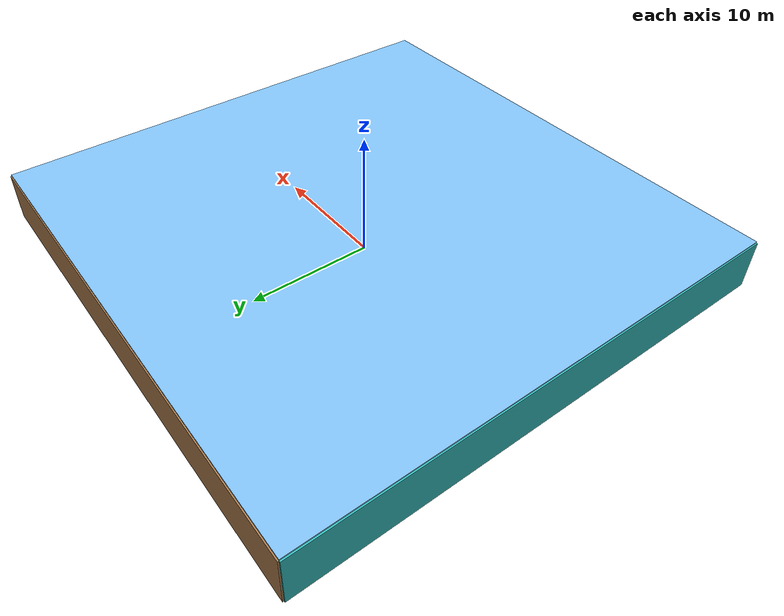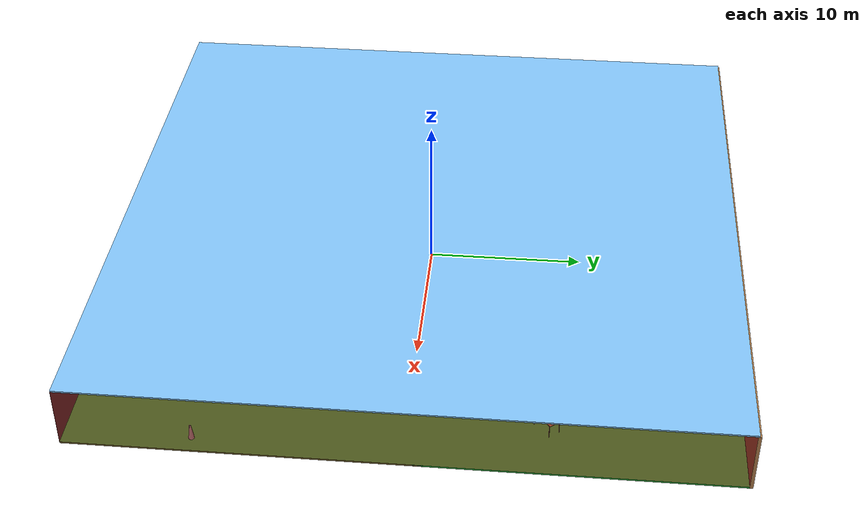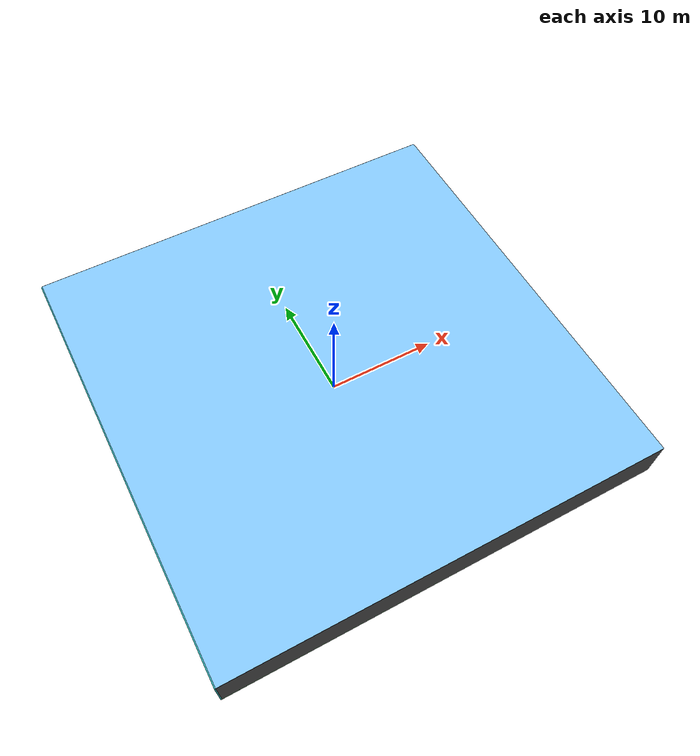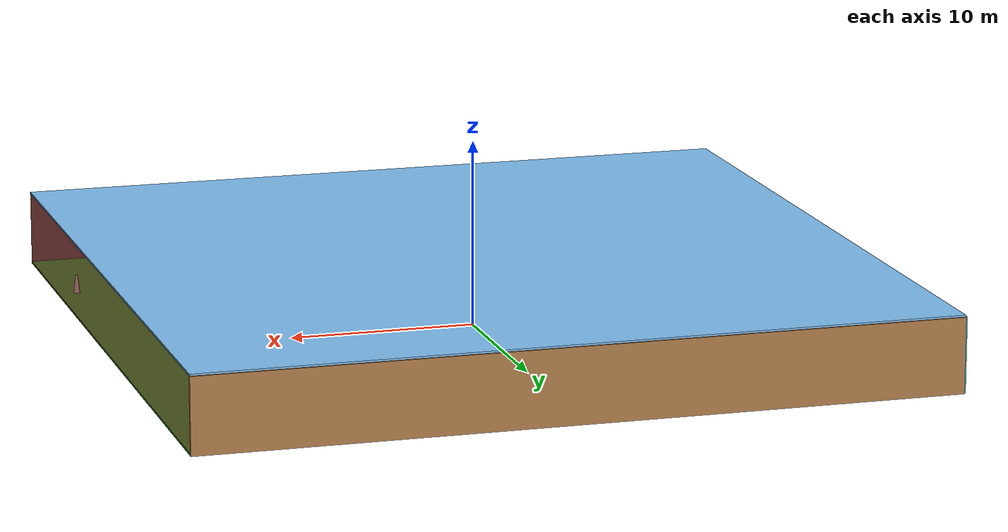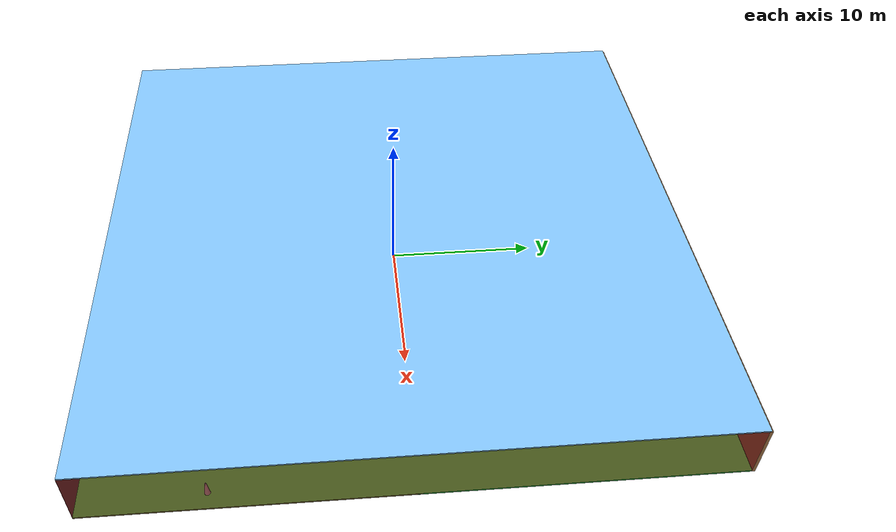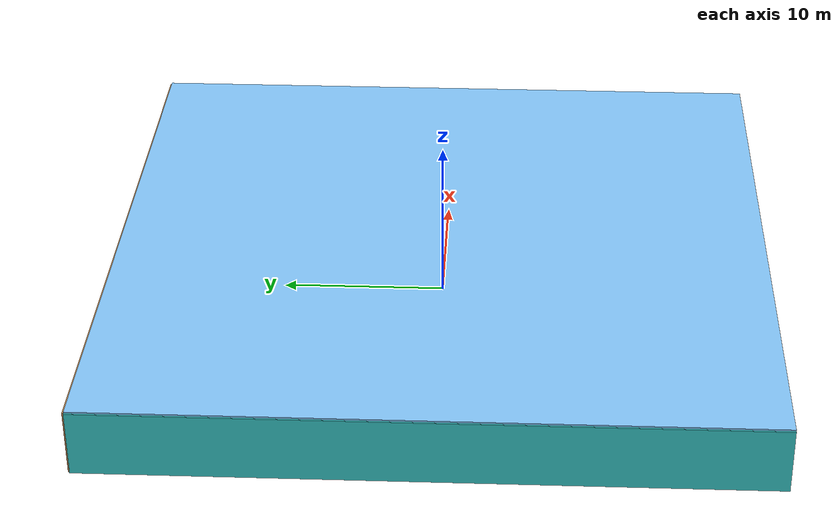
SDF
<sdf version="1.4">
 <world name="default">
  <physics type="ode">
   <max_step_size>0.001</max_step_size>
   <real_time_factor>1</real_time_factor>
   <real_time_update_rate>1000</real_time_update_rate>
   <gravity>0 0 -9.8</gravity>
  </physics>
  <scene><ambient>0.4 0.4 0.4 1</ambient><background>0.7 0.7 0.7 1</background><shadows>1</shadows></scene>
  <model name="Surrounding">
   <static>1</static>
   <link name="Ceiling">
    <collision name="Ceiling_Collision"><geometry><box><size>40 40 0.1</size></box></geometry></collision>
    <visual name="Ceiling_Visual">
     <geometry><box><size>40 40 0.1</size></box></geometry>
     <material>
      <script><uri>file://media/materials/scripts/gazebo.material</uri><name>Gazebo/SkyBlue</name></script>
     </material>
    </visual>
    <pose>0 0 4.05 0 0 0</pose>
   </link>
   <link name="Wall_South">
    <collision name="Wall_South_Collision">
     <geometry><box><size>40 0 4</size></box></geometry>
     <pose>0 0 2 0 -0 0</pose>
    </collision>
    <visual name="Wall_South_Visual">
     <pose>0 0 2 0 -0 0</pose>
     <geometry><box><size>40 0 4</size></box></geometry>
     <material>
      <script><uri>file://media/materials/scripts/gazebo.material</uri><name>Gazebo/DarkGrey</name></script>
     </material>
    </visual>
    <velocity_decay><linear>0</linear><angular>0</angular></velocity_decay>
    <pose>0 -20 0 0 -0 0</pose>
   </link>
   <link name="Wall_East">
    <collision name="Wall_21_Collision">
     <geometry><box><size>40 0 4</size></box></geometry>
     <pose>0 0 2 0 -0 0</pose>
    </collision>
    <visual name="Wall_21_Visual">
     <pose>0 0 2 0 -0 0</pose>
     <geometry><box><size>40 0 4</size></box></geometry>
     <material>
      <script><uri>file://media/materials/scripts/gazebo.material</uri><name>Gazebo/RedTransparent</name></script>
     </material>
    </visual>
    <velocity_decay><linear>0</linear><angular>0</angular></velocity_decay>
    <pose>20 0 0 0 -0 1.5708</pose>
   </link>
   <link name="Wall_North">
    <collision name="Wall_22_Collision">
     <geometry><box><size>40 0.2 4</size></box></geometry>
     <pose>0 0 2 0 -0 0</pose>
    </collision>
    <visual name="Wall_22_Visual">
     <pose>0 0 2 0 -0 0</pose>
     <geometry><box><size>40 0.2 4</size></box></geometry>
     <material>
      <script><uri>file://media/materials/scripts/gazebo.material</uri><name>Gazebo/Wood</name></script>
     </material>
    </visual>
    <velocity_decay><linear>0</linear><angular>0</angular></velocity_decay>
    <pose>0 20 0 0 -0 0</pose>
   </link>
   <link name="Wall_West">
    <collision name="Wall_23_Collision">
     <geometry><box><size>40 0.2 4</size></box></geometry>
     <pose>0 0 2 0 -0 0</pose>
    </collision>
    <visual name="Wall_23_Visual">
     <pose>0 0 2 0 -0 0</pose>
     <geometry><box><size>40 0.2 4</size></box></geometry>
     <material>
      <script><uri>file://media/materials/scripts/gazebo.material</uri><name>Gazebo/Turquoise</name></script>
     </material>
    </visual>
    <velocity_decay><linear>0</linear><angular>0</angular></velocity_decay>
    <pose>-20 0 0 0 0 -1.5708</pose>
   </link>
   <link name="Ground_link">
    <collision name="collision">
     <pose>0 0 .05 0 -0 0</pose>
     <geometry><box><size>40 40 0.1</size></box></geometry>
    </collision>
    <visual name="visual">
     <pose>0 0 .05 0 -0 0</pose>
     <geometry><box><size>40 40 0.1</size></box></geometry>
     <material>
      <script><uri>file://media/materials/scripts/gazebo.material</uri><name>Gazebo/Green</name></script>
     </material>
    </visual>
   </link>
   <static>1</static>
  </model>
  <spherical_coordinates>
   <surface_model>EARTH_WGS84</surface_model>
   <latitude_deg>0</latitude_deg>
   <longitude_deg>0</longitude_deg>
   <elevation>0</elevation>
   <heading_deg>0</heading_deg>
  </spherical_coordinates>
  <light name="lightball_0" type="diffuse">
   <diffuse>0.8 0.8 0.8 1</diffuse>
   <specular>0.2 0.2 0.2 1</specular>
   <attenuation>
    <range>100</range>
    <constant>0.7</constant>
    <linear>0.01</linear>
    <quadratic>0.001</quadratic>
   </attenuation>
   <direction>-0.5 0.1 -0.9</direction>
   <pose>13.0103211091 13.4895677232 2.46990724494 0 0 0</pose>
  </light>
  <light name="lightball_1" type="diffuse">
   <diffuse>0.8 0.8 0.8 1</diffuse>
   <specular>0.2 0.2 0.2 1</specular>
   <attenuation>
    <range>100</range>
    <constant>0.7</constant>
    <linear>0.01</linear>
    <quadratic>0.001</quadratic>
   </attenuation>
   <direction>-0.5 0.1 -0.9</direction>
   <pose>-8.10514467752 -10.2050972851 2.26170282302 0 0 0</pose>
  </light>
  <light name="lightball_2" type="diffuse">
   <diffuse>0.8 0.8 0.8 1</diffuse>
   <specular>0.2 0.2 0.2 1</specular>
   <attenuation>
    <range>100</range>
    <constant>0.7</constant>
    <linear>0.01</linear>
    <quadratic>0.001</quadratic>
   </attenuation>
   <direction>-0.5 0.1 -0.9</direction>
   <pose>-13.5787666993 9.82465449493 1.70572776476 0 0 0</pose>
  </light>
  <light name="lightball_3" type="diffuse">
   <diffuse>0.8 0.8 0.8 1</diffuse>
   <specular>0.2 0.2 0.2 1</specular>
   <attenuation>
    <range>100</range>
    <constant>0.7</constant>
    <linear>0.01</linear>
    <quadratic>0.001</quadratic>
   </attenuation>
   <direction>-0.5 0.1 -0.9</direction>
   <pose>-6.04406902574 -2.63915026817 2.00401902393 0 0 0</pose>
  </light>
  <light name="lightball_4" type="diffuse">
   <diffuse>0.8 0.8 0.8 1</diffuse>
   <specular>0.2 0.2 0.2 1</specular>
   <attenuation>
    <range>100</range>
    <constant>0.7</constant>
    <linear>0.01</linear>
    <quadratic>0.001</quadratic>
   </attenuation>
   <direction>-0.5 0.1 -0.9</direction>
   <pose>8.33662400449 10.9063341478 1.20958861163 0 0 0</pose>
  </light>
  <include><uri>model://cabinet</uri><pose>-18.0826534577 4.18390062281 0 0 0 2.40585297997</pose></include>
  <include>
   <uri>model://construction_cone</uri>
   <pose>-18.2833880474 14.378813036 0 0 0 1.64332616847</pose>
  </include>
  <include>
   <uri>model://robocup_3Dsim_goal</uri>
   <pose>-13.5425056378 -6.65577825936 0 0 0 0.244880852839</pose>
  </include>
  <include><uri>model://cabinet</uri><pose>-14.8870014003 0.75623696651 0 0 0 2.76942785645</pose></include>
  <include>
   <uri>model://construction_cone</uri>
   <pose>-14.9998969485 14.5133310069 0 0 0 1.13486939903</pose>
  </include>
  <include><uri>model://cabinet</uri><pose>-12.631504812 -14.4756079225 0 0 0 1.97793522969</pose></include>
  <include>
   <uri>model://robocup_3Dsim_goal</uri>
   <pose>-12.509883597 -11.6282123749 0 0 0 0.988823013701</pose>
  </include>
  <include><uri>model://cabinet</uri><pose>-10.5169820547 2.36565046552 0 0 0 0.966872890722</pose></include>
  <include><uri>model://table</uri><pose>-11.8167243453 5.63928824005 0 0 0 1.55782132536</pose></include>
  <include>
   <uri>model://construction_cone</uri>
   <pose>-7.91104370161 -6.53377505448 0 0 0 2.25542388623</pose>
  </include>
  <include>
   <uri>model://textured_shapes</uri>
   <pose>-8.1487751855 -1.93605634146 0 0 0 1.74751806903</pose>
  </include>
  <include>
   <uri>model://textured_shapes</uri>
   <pose>-7.82174449313 6.24453175379 0 0 0 1.57265118628</pose>
  </include>
  <include>
   <uri>model://construction_cone</uri>
   <pose>-7.98138529862 16.241333588 0 0 0 3.01663535138</pose>
  </include>
  <include>
   <uri>model://construction_cone</uri>
   <pose>-5.69703856184 -14.7580590565 0 0 0 2.83393187056</pose>
  </include>
  <include><uri>model://table</uri><pose>-5.90313160568 -2.91896059355 0 0 0 0.597077617053</pose></include>
  <include><uri>model://cabinet</uri><pose>-4.90811572577 11.8493218126 0 0 0 0.00646495235031</pose></include>
  <include>
   <uri>model://construction_cone</uri>
   <pose>-2.53133445266 2.83261645553 0 0 0 2.5068778226</pose>
  </include>
  <include><uri>model://cabinet</uri><pose>0.0876006010448 -16.4259340435 0 0 0 0.505123969341</pose></include>
  <include><uri>model://cabinet</uri><pose>2.92802911071 -10.3275525614 0 0 0 1.41320656697</pose></include>
  <include>
   <uri>model://construction_cone</uri>
   <pose>2.48684163149 -9.64879757047 0 0 0 2.7800974837</pose>
  </include>
  <include>
   <uri>model://construction_cone</uri>
   <pose>3.79084124062 2.61607307174 0 0 0 1.75973878815</pose>
  </include>
  <include><uri>model://table</uri><pose>2.47812710967 18.8198768186 0 0 0 2.57242611605</pose></include>
  <include>
   <uri>model://textured_shapes</uri>
   <pose>6.11198568598 -17.052856755 0 0 0 1.78697202876</pose>
  </include>
  <include><uri>model://cabinet</uri><pose>6.85975998729 -9.26862431372 0 0 0 2.73616372897</pose></include>
  <include>
   <uri>model://robocup_3Dsim_goal</uri>
   <pose>10.3956512341 -16.9729244071 0 0 0 1.21106553764</pose>
  </include>
  <include>
   <uri>model://robocup_3Dsim_goal</uri>
   <pose>9.67849643032 -15.4774182193 0 0 0 1.97410684296</pose>
  </include>
  <include>
   <uri>model://textured_shapes</uri>
   <pose>8.68620477442 16.0225240462 0 0 0 0.930773439601</pose>
  </include>
  <include><uri>model://cabinet</uri><pose>13.4153889317 -13.812334857 0 0 0 2.4542734015</pose></include>
  <include><uri>model://cabinet</uri><pose>15.4636532225 -7.74249846534 0 0 0 1.03909818774</pose></include>
  <include><uri>model://table</uri><pose>16.2835191392 8.31424366816 0 0 0 0.713297683172</pose></include>
  <include>
   <uri>model://construction_cone</uri>
   <pose>18.9777033622 -12.3840884799 0 0 0 1.84622138203</pose>
  </include>
 </world>
</sdf>

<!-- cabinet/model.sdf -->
<sdf version="1.5">
  <model name="cabinet">
    <static>true</static>
    <link name="cabinet_bottom_plate">
      <inertial>
        <pose>0 0 -1 0 0 0</pose>
        <inertia>
          <ixx>2.050000</ixx>
          <ixy>0</ixy>
          <ixz>0</ixz>
          <iyy>2.050000</iyy>
          <iyz>0</iyz>
          <izz>2.050000</izz>
        </inertia>
        <mass>25.000000</mass>
      </inertial>
      <collision name="cabinet_bottom_plate_geom">
        <pose>0 0 0.010000 0 0 0</pose>
        <geometry>
          <box>
            <size>0.450000 0.450000 0.020000</size>
          </box>
        </geometry>
      </collision>
      <visual name="cabinet_bottom_plate_geom_visual">
        <pose>0 0 0.010000 0 0 0</pose>
        <geometry>
          <box>
            <size>0.450000 0.450000 0.020000</size>
          </box>
        </geometry>
        <material>
          <script>
            <uri>model://media/materials/scripts/gazebo.material</uri>
            <name>Gazebo/Wood</name>
          </script>
        </material>
      </visual>
      <collision name="cabinet_bottom_plate_geom_cabinet_back_plate">
        <pose>0.235000 0 0.510000 0 0 0</pose>
        <geometry>
          <box>
            <size>0.020000 0.450000 1.020000</size>
          </box>
        </geometry>
      </collision>
      <visual name="cabinet_bottom_plate_geom_cabinet_back_plate_visual">
        <pose>0.235000 0 0.510000 0 0 0</pose>
        <geometry>
          <box>
            <size>0.020000 0.450000 1.020000</size>
          </box>
        </geometry>
        <material>
          <script>
            <uri>model://media/materials/scripts/gazebo.material</uri>
            <name>Gazebo/Wood</name>
          </script>
        </material>
      </visual>
      <collision name="cabinet_bottom_plate_geom_cabinet_left_plate">
        <pose>0 0.235000 0.510000 0 0 0</pose>
        <geometry>
          <box>
            <size>0.450000 0.020000 1.020000</size>
          </box>
        </geometry>
      </collision>
      <visual name="cabinet_bottom_plate_geom_cabinet_left_plate_visual">
        <pose>0 0.235000 0.510000 0 0 0</pose>
        <geometry>
          <box>
            <size>0.450000 0.020000 1.020000</size>
          </box>
        </geometry>
        <material>
          <script>
            <uri>model://media/materials/scripts/gazebo.material</uri>
            <name>Gazebo/Wood</name>
          </script>
        </material>
      </visual>
      <collision name="cabinet_bottom_plate_geom_cabinet_middle_plate">
        <pose>0 0 0.510000 0 0 0</pose>
        <geometry>
          <box>
            <size>0.450000 0.450000 0.020000</size>
          </box>
        </geometry>
      </collision>
      <visual name="cabinet_bottom_plate_geom_cabinet_middle_plate_visual">
        <pose>0 0 0.510000 0 0 0</pose>
        <geometry>
          <box>
            <size>0.450000 0.450000 0.020000</size>
          </box>
        </geometry>
        <material>
          <script>
            <uri>model://media/materials/scripts/gazebo.material</uri>
            <name>Gazebo/Wood</name>
          </script>
        </material>
      </visual>
      <collision name="cabinet_bottom_plate_geom_cabinet_right_plate">
        <pose>0 -0.235000 0.510000 0 0 0</pose>
        <geometry>
          <box>
            <size>0.450000 0.020000 1.020000</size>
          </box>
        </geometry>
      </collision>
      <visual name="cabinet_bottom_plate_geom_cabinet_right_plate_visual">
        <pose>0 -0.235000 0.510000 0 0 0</pose>
        <geometry>
          <box>
            <size>0.450000 0.020000 1.020000</size>
          </box>
        </geometry>
        <material>
          <script>
            <uri>model://media/materials/scripts/gazebo.material</uri>
            <name>Gazebo/Wood</name>
          </script>
        </material>
      </visual>
      <collision name="cabinet_bottom_plate_geom_cabinet_top_plate">
        <pose>0 0 1.010000 0 0 0</pose>
        <geometry>
          <box>
            <size>0.450000 0.450000 0.020000</size>
          </box>
        </geometry>
      </collision>
      <visual name="cabinet_bottom_plate_geom_cabinet_top_plate_visual">
        <pose>0 0 1.010000 0 0 0</pose>
        <geometry>
          <box>
            <size>0.450000 0.450000 0.020000</size>
          </box>
        </geometry>
        <material>
          <script>
            <uri>model://media/materials/scripts/gazebo.material</uri>
            <name>Gazebo/Wood</name>
          </script>
        </material>
      </visual>
    </link>
  </model>
</sdf>

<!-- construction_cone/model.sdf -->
<sdf version="1.5">
  <model name="Construction Cone">
    <link name="link">
      <collision name="collision">
        <geometry>
          <mesh>
            <scale>10 10 10</scale>
            <uri>file://isr-testbed/construction_cone/meshes/construction_cone.dae</uri>
          </mesh>
        </geometry>
      </collision>
      <visual name="visual">
        <geometry>
          <mesh>
            <scale>10 10 10</scale>
            <uri>file://isr-testbed/construction_cone/meshes/construction_cone.dae</uri>
          </mesh>
        </geometry>
      </visual>
    </link>
  </model>
</sdf>

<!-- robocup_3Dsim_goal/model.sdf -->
<sdf version="1.5">
  <model name="robocup_3d_goal">
    <static>true</static>
    <link name="left_post">
      <pose>0 1.05 0.45 0 0 0</pose>
      <collision name="collision">
        <geometry>
          <cylinder>
            <radius>0.05</radius>
            <length>0.9</length>
          </cylinder>
        </geometry>
      </collision>
      <visual name="visual">
        <geometry>
          <cylinder>
            <radius>0.05</radius>
            <length>0.9</length>
          </cylinder>
        </geometry>
        <material>
          <script>
            <uri>file://media/materials/scripts/gazebo.material</uri>
            <name>Gazebo/ZincYellow</name>
          </script>
        </material>
      </visual>
    </link>
    <link name="left_support_horiz_lower">
      <pose>0.30 1.05 0.01 0 0 0</pose>
      <collision name="collision">
        <geometry>
          <box>
            <size>0.50 0.02 0.02</size>
          </box>
        </geometry>
      </collision>
      <visual name="visual">
        <geometry>
          <box>
            <size>0.50 0.02 0.02</size>
          </box>
        </geometry>
        <material>
          <script>
            <uri>file://media/materials/scripts/gazebo.material</uri>
            <name>Gazebo/White</name>
          </script>
        </material>
      </visual>
    </link>
    <link name="left_support_horiz_upper">
      <pose>0.30 1.05 0.79 0 0 0</pose>
      <collision name="collision">
        <geometry>
          <box>
            <size>0.50 0.02 0.02</size>
          </box>
        </geometry>
      </collision>
      <visual name="visual">
        <geometry>
          <box>
            <size>0.50 0.02 0.02</size>
          </box>
        </geometry>
        <material>
          <script>
            <uri>file://media/materials/scripts/gazebo.material</uri>
            <name>Gazebo/White</name>
          </script>
        </material>
      </visual>
    </link>
    <link name="left_support_vertical">
      <pose>0.56 1.05 0.4 0 1.5708 0</pose>
      <collision name="collision">
        <geometry>
          <box>
            <size>0.80 0.02 0.02</size>
          </box>
        </geometry>
      </collision>
      <visual name="visual">
        <geometry>
          <box>
            <size>0.80 0.02 0.02</size>
          </box>
        </geometry>
        <material>
          <script>
            <uri>file://media/materials/scripts/gazebo.material</uri>
            <name>Gazebo/White</name>
          </script>
        </material>
      </visual>
    </link>
    <link name="right_support_horiz_lower">
      <pose>0.30 -1.05 0.01 0 0 0</pose>
      <collision name="collision">
        <geometry>
          <box>
            <size>0.50 0.02 0.02</size>
          </box>
        </geometry>
      </collision>
      <visual name="visual">
        <geometry>
          <box>
            <size>0.50 0.02 0.02</size>
          </box>
        </geometry>
        <material>
          <script>
            <uri>file://media/materials/scripts/gazebo.material</uri>
            <name>Gazebo/White</name>
          </script>
        </material>
      </visual>
    </link>
    <link name="right_support_horiz_upper">
      <pose>0.30 -1.05 0.79 0 0 0</pose>
      <collision name="collision">
        <geometry>
          <box>
            <size>0.50 0.02 0.02</size>
          </box>
        </geometry>
      </collision>
      <visual name="visual">
        <geometry>
          <box>
            <size>0.50 0.02 0.02</size>
          </box>
        </geometry>
        <material>
          <script>
            <uri>file://media/materials/scripts/gazebo.material</uri>
            <name>Gazebo/White</name>
          </script>
        </material>
      </visual>
    </link>
    <link name="right_support_vertical">
      <pose>0.56 -1.05 0.4 0 1.5708 0</pose>
      <collision name="collision">
        <geometry>
          <box>
            <size>0.80 0.02 0.02</size>
          </box>
        </geometry>
      </collision>
      <visual name="visual">
        <geometry>
          <box>
            <size>0.80 0.02 0.02</size>
          </box>
        </geometry>
        <material>
          <script>
            <uri>file://media/materials/scripts/gazebo.material</uri>
            <name>Gazebo/White</name>
          </script>
        </material>
      </visual>
    </link>
    <link name="center_support_horiz_lower">
      <pose>0.56 0 0.01 0 1.5708 0</pose>
      <collision name="collision">
        <geometry>
          <box>
            <size>0.02 2.08 0.02</size>
          </box>
        </geometry>
      </collision>
      <visual name="visual">
        <geometry>
          <box>
            <size>0.02 2.08 0.02</size>
          </box>
        </geometry>
        <material>
          <script>
            <uri>file://media/materials/scripts/gazebo.material</uri>
            <name>Gazebo/White</name>
          </script>
        </material>
      </visual>
    </link>
    <link name="center_support_horiz_upper">
      <pose>0.56 0 0.79 0 1.5708 0</pose>
      <collision name="collision">
        <geometry>
          <box>
            <size>0.02 2.08 0.02</size>
          </box>
        </geometry>
      </collision>
      <visual name="visual">
        <geometry>
          <box>
            <size>0.02 2.08 0.02</size>
          </box>
        </geometry>
        <material>
          <script>
            <uri>file://media/materials/scripts/gazebo.material</uri>
            <name>Gazebo/White</name>
          </script>
        </material>
      </visual>
    </link>
    <link name="right_post">
      <pose>0 -1.05 0.45 0 0 0</pose>
      <collision name="collision">
        <geometry>
          <cylinder>
            <radius>0.05</radius>
            <length>0.9</length>
          </cylinder>
        </geometry>
      </collision>
      <visual name="visual">
        <geometry>
          <cylinder>
            <radius>0.05</radius>
            <length>0.9</length>
          </cylinder>
        </geometry>
        <material>
          <script>
            <uri>file://media/materials/scripts/gazebo.material</uri>
            <name>Gazebo/ZincYellow</name>
          </script>
        </material>
      </visual>
    </link>
    <link name="crossbar">
      <pose>0 0 0.85 1.57 1.57 0</pose>
      <collision name="collision">
        <geometry>
          <cylinder>
            <radius>0.05</radius>
            <length>2.0</length>
          </cylinder>
        </geometry>
      </collision>
      <visual name="visual">
        <geometry>
          <cylinder>
            <radius>0.05</radius>
            <length>2.0</length>
          </cylinder>
        </geometry>
        <material>
          <script>
            <uri>file://media/materials/scripts/gazebo.material</uri>
            <name>Gazebo/ZincYellow</name>
          </script>
        </material>
      </visual>
    </link>
    <link name="center_net">
      <pose>0.56 0 0.40 0 0 0</pose>
      <collision name="collision">
        <geometry>
          <box>
            <size>0.01 2.1 0.80</size>
          </box>
        </geometry>
      </collision>
      <visual name="visual">
        <geometry>
          <box>
            <size>0.01 2.1 0.80</size>
          </box>
        </geometry>
        <material>
          <script>
            <uri>model://../model_source/models/robocup09_spl_field/materials/scripts/</uri>
            <uri>model://../model_source/models/robocup09_spl_field/materials/textures/</uri>
            <name>RoboCup/Net</name>
          </script>
        </material>
      </visual>
    </link>
    <link name="left_net">
      <pose>0.30 1.05 0.40 0 0 0</pose>
      <collision name="collision">
        <geometry>
          <box>
            <size>0.50 0.01 0.76</size>
          </box>
        </geometry>
      </collision>
      <visual name="visual">
        <geometry>
          <box>
            <size>0.50 0.01 0.76</size>
          </box>
        </geometry>
        <material>
          <script>
            <uri>model://../model_source/models/robocup09_spl_field/materials/scripts/</uri>
            <uri>model://../model_source/models/robocup09_spl_field/materials/textures/</uri>
            <name>RoboCup/Net</name>
          </script>
        </material>
      </visual>
    </link>
    <link name="right_net">
      <pose>0.30 -1.05 0.40 0 0 0</pose>
      <collision name="collision">
        <geometry>
          <box>
            <size>0.50 0.01 0.76</size>
          </box>
        </geometry>
      </collision>
      <visual name="visual">
        <geometry>
          <box>
            <size>0.50 0.01 0.76</size>
          </box>
        </geometry>
        <material>
          <script>
            <uri>model://../model_source/models/robocup09_spl_field/materials/scripts/</uri>
            <uri>model://../model_source/models/robocup09_spl_field/materials/textures/</uri>
            <name>RoboCup/Net</name>
          </script>
        </material>
      </visual>
    </link>
  </model>
</sdf>

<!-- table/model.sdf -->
<sdf version="1.5">
  <model name="table">
    <static>true</static>
    <link name="link">
      <collision name="surface">
        <pose>0 0 1.0 0 0 0</pose>
        <geometry>
          <box>
            <size>1.5 0.8 0.03</size>
          </box>
        </geometry>
        <surface>
          <friction>
            <ode>
              <mu>0.6</mu>
              <mu2>0.6</mu2>
            </ode>
          </friction>
        </surface>
      </collision>
      <visual name="visual1">
        <pose>0 0 1.0 0 0 0</pose>
        <geometry>
          <box>
            <size>1.5 0.8 0.03</size>
          </box>
        </geometry>
        <material>
          <script>
            <uri>model://media/materials/scripts/gazebo.material</uri>
            <name>Gazebo/Wood</name>
          </script>
        </material>
      </visual>
      <collision name="front_left_leg">
        <pose>0.68 0.38 0.5 0 0 0</pose>
        <geometry>
          <cylinder>
            <radius>0.02</radius>
            <length>1.0</length>
          </cylinder>
        </geometry>
      </collision>
      <visual name="front_left_leg">
        <pose>0.68 0.38 0.5 0 0 0</pose>
        <geometry>
          <cylinder>
            <radius>0.02</radius>
            <length>1.0</length>
          </cylinder>
        </geometry>
        <material>
          <script>
            <uri>model://media/materials/scripts/gazebo.material</uri>
            <name>Gazebo/Grey</name>
          </script>
        </material>
      </visual>
      <collision name="front_right_leg">
        <pose>0.68 -0.38 0.5 0 0 0</pose>
        <geometry>
          <cylinder>
            <radius>0.02</radius>
            <length>1.0</length>
          </cylinder>
        </geometry>
      </collision>
      <visual name="front_right_leg">
        <pose>0.68 -0.38 0.5 0 0 0</pose>
        <geometry>
          <cylinder>
            <radius>0.02</radius>
            <length>1.0</length>
          </cylinder>
        </geometry>
        <material>
          <script>
            <uri>model://media/materials/scripts/gazebo.material</uri>
            <name>Gazebo/Grey</name>
          </script>
        </material>
      </visual>
      <collision name="back_right_leg">
        <pose>-0.68 -0.38 0.5 0 0 0</pose>
        <geometry>
          <cylinder>
            <radius>0.02</radius>
            <length>1.0</length>
          </cylinder>
        </geometry>
      </collision>
      <visual name="back_right_leg">
        <pose>-0.68 -0.38 0.5 0 0 0</pose>
        <geometry>
          <cylinder>
            <radius>0.02</radius>
            <length>1.0</length>
          </cylinder>
        </geometry>
        <material>
          <script>
            <uri>model://media/materials/scripts/gazebo.material</uri>
            <name>Gazebo/Grey</name>
          </script>
        </material>
      </visual>
      <collision name="back_left_leg">
        <pose>-0.68 0.38 0.5 0 0 0</pose>
        <geometry>
          <cylinder>
            <radius>0.02</radius>
            <length>1.0</length>
          </cylinder>
        </geometry>
      </collision>
      <visual name="back_left_leg">
        <pose>-0.68 0.38 0.5 0 0 0</pose>
        <geometry>
          <cylinder>
            <radius>0.02</radius>
            <length>1.0</length>
          </cylinder>
        </geometry>
        <material>
          <script>
            <uri>model://media/materials/scripts/gazebo.material</uri>
            <name>Gazebo/Grey</name>
          </script>
        </material>
      </visual>
    </link>
  </model>
</sdf>

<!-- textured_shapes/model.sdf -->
<sdf version="1.6">
  <model name="textured_shapes">
    <pose>0 0 0.5 0 0 0</pose>
    <link name="box">
      <pose>0 -1.5 0 0 0 0</pose>
      <collision name="collision">
        <geometry>
          <box>
            <size>1 1 1</size>
          </box>
        </geometry>
      </collision>
      <visual name="visual">
        <geometry>
          <box>
            <size>1 1 1</size>
          </box>
        </geometry>
        <material>
          <script>
            <uri>model://../model_source/models/textured_shapes/materials/scripts</uri>
            <uri>model://../model_source/models/textured_shapes/materials/textures</uri>
            <name>TexturedShape/Squares</name>
          </script>
        </material>
      </visual>
    </link>
    <link name="sphere">
      <collision name="collision">
        <geometry>
          <sphere>
            <radius>0.5</radius>
          </sphere>
        </geometry>
      </collision>
      <visual name="visual">
        <geometry>
          <sphere>
            <radius>0.5</radius>
          </sphere>
        </geometry>
        <material>
          <script>
            <uri>model://../model_source/models/textured_shapes/materials/scripts</uri>
            <uri>model://../model_source/models/textured_shapes/materials/textures</uri>
            <name>TexturedShape/Squares</name>
          </script>
        </material>
      </visual>
    </link>
    <link name="cylinder">
      <pose>0 1.5 0 0 0 0</pose>
      <collision name="collision">
        <geometry>
          <cylinder>
            <radius>0.5</radius>
            <length>1</length>
          </cylinder>
        </geometry>
      </collision>
      <visual name="visual">
        <geometry>
          <cylinder>
            <radius>0.5</radius>
            <length>1</length>
          </cylinder>
        </geometry>
        <material>
          <script>
            <uri>model://../model_source/models/textured_shapes/materials/scripts</uri>
            <uri>model://../model_source/models/textured_shapes/materials/textures</uri>
            <name>TexturedShape/Squares</name>
          </script>
        </material>
      </visual>
    </link>
  </model>
</sdf>
